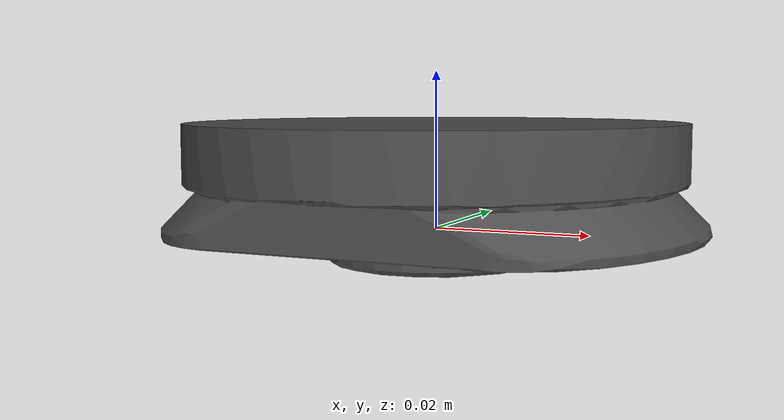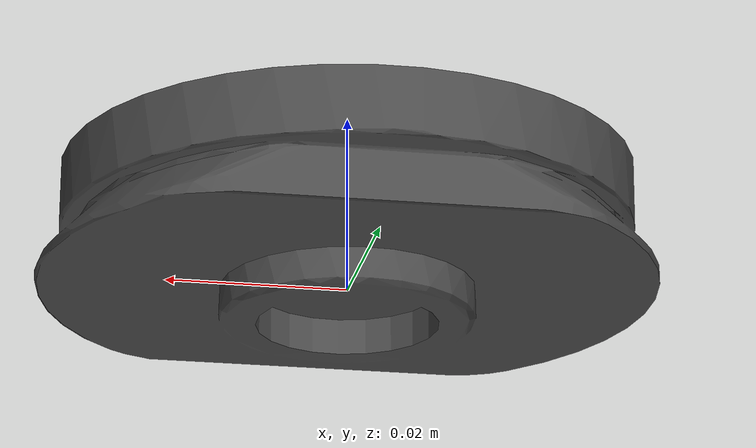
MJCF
<mujoco model="leg_ankle_attach">
  <default>
    <default class="visual">
      <geom group="2" type="mesh" contype="0" conaffinity="0"/>
    </default>
    <default class="collision">
      <geom group="3" type="mesh"/>
    </default>
  </default>
  <asset>
    <material name="mtl_leg_ankle_attach" specular="0.20000000000000004" shininess="1.0" rgba="0.29803922 0.29803922 0.29803922 1.0"/>
    <mesh file="leg_ankle_attach.obj"/>
  </asset>
  <worldbody>
    <body name="leg_ankle_attach">
      <geom material="mtl_leg_ankle_attach" mesh="leg_ankle_attach" class="visual"/>
      <geom mesh="leg_ankle_attach" class="collision"/>
    </body>
  </worldbody>
</mujoco>
